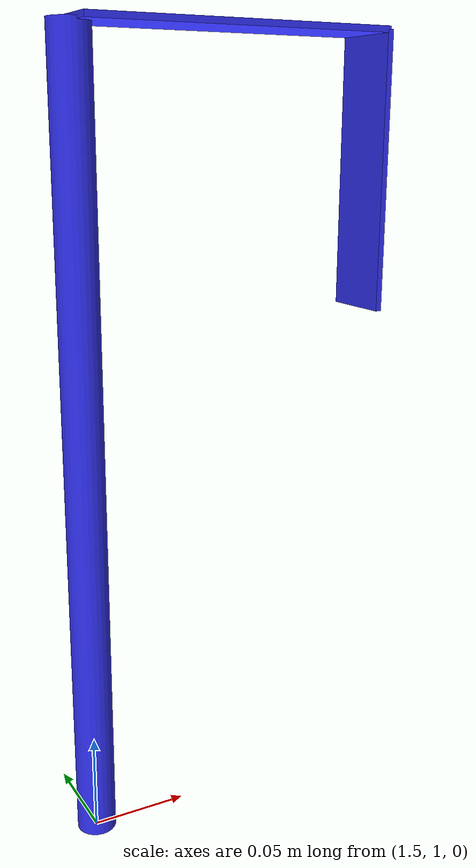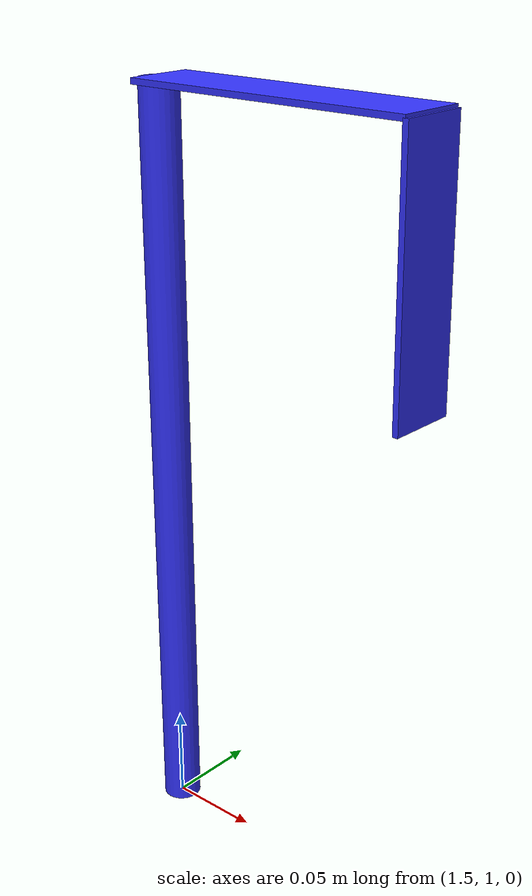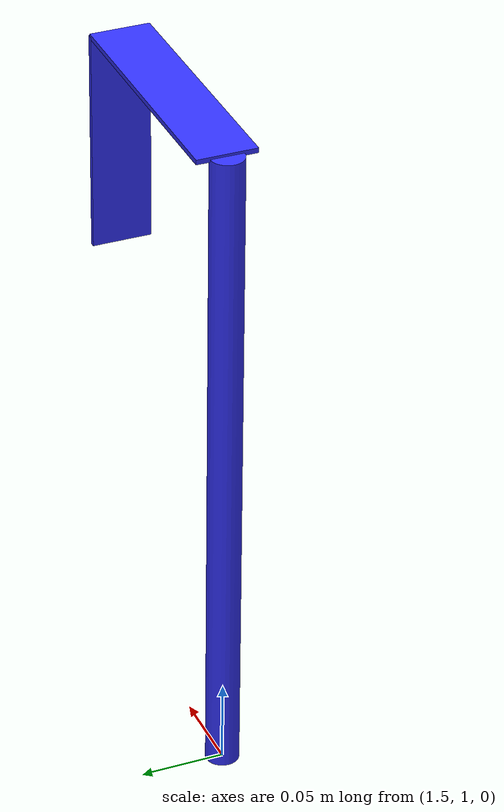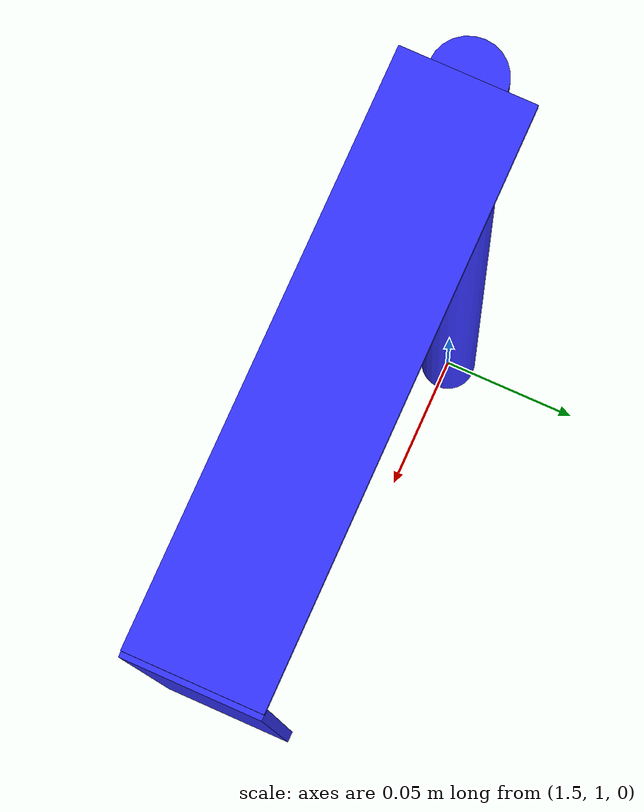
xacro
<?xml version="1.0"?>
<robot xmlns:xacro="http://www.ros.org/wiki/xacro"  name="robot">

	 <link name="world"></link>

	  <joint name="base_joint" type="fixed">
        <origin xyz="1.5 1.0 0" rpy="0 0 0"/>
        <parent link="world"/>
        <child link="base_link"/>
    </joint>

    <link name="base_link">
		<visual>
		    <origin xyz="0 0 0.2" rpy="0 0 0"/>
			<geometry>
				<cylinder radius="0.01" length="0.4"/>
			</geometry>
			<material name="blue"/>
		</visual>
  		<collision>
  			<origin xyz="0 0 0.2" rpy="0 0 0"/>
			<geometry>
				<cylinder radius="0.01" length="0.4"/>
			</geometry>
  		</collision>
		<inertial>
    		<mass value="0.4536"/>
      		<inertia ixx="0.2" ixy="0" ixz="0" iyy="0.2" iyz="0" izz="0.8"/>
 		 </inertial>
	</link>

	<link name="arm1_link">
		<visual>
			<origin xyz="0.078 0 0" rpy="0 1.57079632679 0"/>
			<geometry>
				<box size="0.003 0.036 0.156"/>
			</geometry>
	     	<material name="blue"/>
	  	 </visual>
		<collision>
          <origin xyz="0.078 0 0" rpy="0 1.57079632679 0"/>
			<geometry>
				<box size="0.003 0.036 0.156"/>
			</geometry>
       </collision>
	   <inertial>
    		<mass value="0.4536"/>
      		<inertia ixx="0.002" ixy="0" ixz="0" iyy="0.000215" iyz="0" izz="0.0008"/>
 		 </inertial>
	</link>

	<link name="arm2_link">
		<visual>
			<origin xyz="0 0 -0.0675" rpy="0 0 0"/>
			<geometry>
				<box size="0.003 0.036 0.135"/>
			</geometry>
	     	<material name="blue"/>
	   </visual>
	   <collision>
         <origin xyz="0 0 -0.0675" rpy="0 0 0"/>
			<geometry>
				<box size="0.003 0.036 0.135"/>
			</geometry>
       </collision>
	 	  <inertial>
     		 <mass value="0.40824"/>
     		 <inertia ixx="0.0015" ixy="0" ixz="0" iyy="0.0002" iyz="0" izz="0.0007"/>
  	  </inertial>
	</link>

	<joint name="arm1_joint" type="continuous">
    	<parent link="base_link"/>
    	<child link="arm1_link"/>
    	<origin xyz="0 0 0.4" rpy="0 0 0"/>
  		<axis xyz = "0 0 1"/>
		<dynamics damping="0.03"/>
	</joint>

	<joint name="arm2_joint" type="continuous">
    	<parent link="arm1_link"/>
    	<child link="arm2_link"/>
    	<origin xyz="0.156 0 0" rpy="0 0 0"/>
  		<axis xyz = "1 0 0"/>
		<dynamics damping="0.02"/>
	</joint>

	<xacro:include filename="include.xacro" />
	<xacro:include filename="gazebo.control.xacro" />

</robot>

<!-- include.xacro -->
<robot xmlns:xacro="http://www.ros.org/wiki/xacro" >

    <material name="orange">
        <color rgba="1 0.3 0.1 1"/>
    </material>

    <material name="blue">
        <color rgba="0.2 0.2 1 1"/>
    </material>

    <material name="black">
        <color rgba="0 0 0 1"/>
    </material>

	<material name="white">
        <color rgba="1 1 1 1"/>
    </material>

     <gazebo>
        <plugin name="gazebo_ros_joint_state_publisher"
            filename="libgazebo_ros_joint_state_publisher.so">
            <update_rate>20</update_rate>
            <joint_name>arm1_joint</joint_name>
            <joint_name>arm2_joint</joint_name>
            <joint_name>base_joint</joint_name>
        </plugin>
    </gazebo>

    <gazebo reference="base_link">
    	<material>Gazebo/Orange</material>
	</gazebo>

    <gazebo reference="arm1_link">
    	<material>Gazebo/Black</material>
	</gazebo>

    <gazebo reference="arm2_link">
    	<material>Gazebo/Orange</material>
	</gazebo>

</robot>
